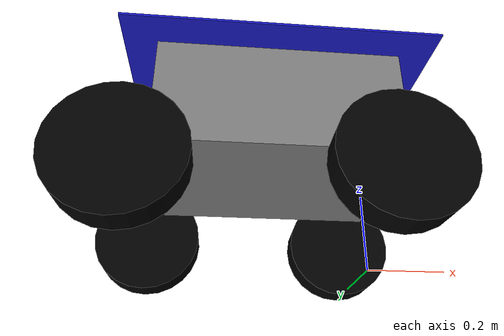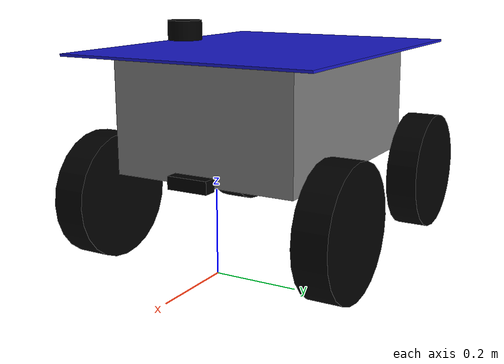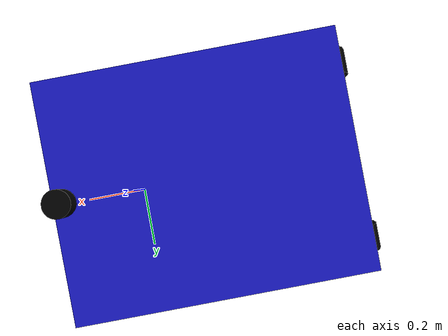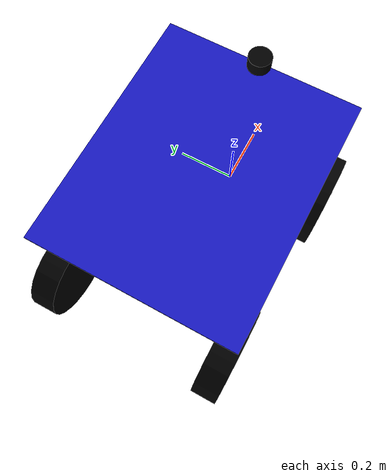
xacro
<?xml version="1.0"?>
<robot xmlns:xacro="http://www.ros.org/wiki/xacro" name="viet_rover">

    <xacro:property name="body_l" value="0.6096"/> <xacro:property name="body_w" value="0.4572"/> <xacro:property name="body_h" value="0.2794"/> <xacro:property name="plate_l" value="0.7747"/> <xacro:property name="plate_w" value="0.6223"/> <xacro:property name="wheel_rad" value="0.1524"/> <xacro:property name="front_track" value="0.61595"/> <xacro:property name="rear_track" value="0.5588"/>  <xacro:property name="wheel_base" value="0.59055"/> <xacro:property name="front_axle_offset" value="0.0635"/> <material name="grey"> <color rgba="0.5 0.5 0.5 1"/> </material>
    <material name="blue"> <color rgba="0.1 0.1 0.8 1"/> </material>
    <material name="black"> <color rgba="0 0 0 1"/> </material>

    <link name="base_footprint"/>

    <joint name="base_joint" type="fixed">
        <parent link="base_footprint"/>
        <child link="base_link"/>
        <origin xyz="0 0 ${wheel_rad}" rpy="0 0 0"/>
    </joint>

    <link name="base_link">
        <inertial>
            <origin xyz="0 0 0" rpy="0 0 0"/>
            <mass value="9.07"/> <inertia ixx="1.5" ixy="0" ixz="0" iyy="2.0" iyz="0" izz="2.5"/>
        </inertial>
    </link>

    <link name="body_box">
        <visual>
            <origin xyz="${-body_l/2 + front_axle_offset} 0 ${body_h/2}" rpy="0 0 0"/>
            <geometry> <box size="${body_l} ${body_w} ${body_h}"/> </geometry>
            <material name="grey"/>
        </visual>
        <collision>
            <origin xyz="${-body_l/2 + front_axle_offset} 0 ${body_h/2}" rpy="0 0 0"/>
            <geometry> <box size="${body_l} ${body_w} ${body_h}"/> </geometry>
        </collision>
        <inertial>
            <origin xyz="${-body_l/2 + front_axle_offset} 0 ${body_h/2}" rpy="0 0 0"/>
            <mass value="4.0"/>
            <inertia ixx="0.1" ixy="0" ixz="0" iyy="0.1" iyz="0" izz="0.1"/>
        </inertial>
    </link>

    <joint name="body_joint" type="fixed">
        <parent link="base_link"/>
        <child link="body_box"/>
        <origin xyz="0 0 0.06985" rpy="0 0 0"/>
    </joint>

    <xacro:macro name="wheel" params="prefix reflect x_pos joint_type">
        <link name="${prefix}_wheel">
            <visual>
                <origin xyz="0 0 0" rpy="${3.14159/2} 0 0"/>
                <geometry> <cylinder radius="${wheel_rad}" length="0.08"/> </geometry>
                <material name="black"/>
            </visual>
            <collision>
                <origin xyz="0 0 0" rpy="${3.14159/2} 0 0"/>
                <geometry> <cylinder radius="${wheel_rad}" length="0.08"/> </geometry>
            </collision>
            <inertial>
                <origin xyz="0 0 0" rpy="${3.14159/2} 0 0"/>
                <mass value="2.0"/>
                <inertia ixx="0.013" ixy="0" ixz="0" iyy="0.013" iyz="0" izz="0.025"/>
            </inertial>
        </link>
        <joint name="${prefix}_wheel_joint" type="${joint_type}">
            <parent link="base_link"/>
            <child link="${prefix}_wheel"/>
            <origin xyz="${x_pos} ${reflect} 0" rpy="0 0 0"/>
            <axis xyz="0 1 0"/>
        </joint>
        <gazebo reference="${prefix}_wheel">
            <mu1 value="1.0"/>
            <mu2 value="1.0"/>
            <kp value="10000000.0"/>
            <kd value="1.0"/>
            <fdir1 value="1 0 0"/>
            <material>Gazebo/Black</material>
        </gazebo>
    </xacro:macro>

    <xacro:wheel prefix="left_front" reflect="${front_track/2}" x_pos="0" joint_type="continuous"/>
    <xacro:wheel prefix="right_front" reflect="-${front_track/2}" x_pos="0" joint_type="continuous"/>
    <xacro:wheel prefix="left_rear" reflect="${rear_track/2}" x_pos="-${wheel_base}" joint_type="continuous"/>
    <xacro:wheel prefix="right_rear" reflect="-${rear_track/2}" x_pos="-${wheel_base}" joint_type="continuous"/>

    <link name="top_plate">
        <visual>
            <geometry> <box size="${plate_l} ${plate_w} 0.006"/> </geometry>
            <material name="blue"/>
        </visual>
        <inertial>
            <mass value="1.0"/>
            <inertia ixx="0.01" ixy="0" ixz="0" iyy="0.01" iyz="0" izz="0.01"/>
        </inertial>
    </link>

    <joint name="plate_joint" type="fixed">
        <parent link="body_box"/>
        <child link="top_plate"/>
        <origin xyz="${-body_l/2 + front_axle_offset} 0 ${body_h}" rpy="0 0 0"/>
    </joint>

    <link name="laser">
        <visual>
            <geometry> <cylinder radius="0.035" length="0.04"/> </geometry>
            <material name="black"/>
        </visual>
        <inertial>
            <mass value="0.1"/>
            <inertia ixx="0.0001" ixy="0" ixz="0" iyy="0.0001" iyz="0" izz="0.0001"/>
        </inertial>
    </link>

    <joint name="laser_joint" type="fixed">
        <parent link="top_plate"/>
        <child link="laser"/>
        <origin xyz="${plate_l/2 - 0.0381} 0 0.0635" rpy="0 0 0"/>
    </joint>

    <link name="camera_link">
        <visual>
            <geometry> <box size="0.03 0.1 0.03"/> </geometry>
            <material name="black"/>
        </visual>
        <inertial>
            <mass value="0.1"/>
            <inertia ixx="0.0001" ixy="0" ixz="0" iyy="0.0001" iyz="0" izz="0.0001"/>
        </inertial>
    </link>

    <joint name="camera_joint" type="fixed">
        <parent link="base_link"/>
        <child link="camera_link"/>
        <origin xyz="0.1016 0 0.08509" rpy="0 0 0"/>
    </joint>

    <gazebo>
        <plugin
            filename="gz-sim-diff-drive-system"
            name="gz::sim::systems::DiffDrive">
            <left_joint>left_front_wheel_joint</left_joint>
            <right_joint>right_front_wheel_joint</right_joint>
            <wheel_separation>${front_track}</wheel_separation>
            <wheel_radius>${wheel_rad}</wheel_radius>
            <odom_publish_frequency>50</odom_publish_frequency>

            <kinematic_controls>true</kinematic_controls>

            <topic>cmd_vel</topic>
            <odom_topic>odom</odom_topic>
            <tf_topic>tf</tf_topic>
            <frame_id>odom</frame_id>
            <child_frame_id>base_footprint</child_frame_id>
        </plugin>

        <plugin
            filename="gz-sim-joint-state-publisher-system"
            name="gz::sim::systems::JointStatePublisher">
            <topic>joint_states</topic>
        </plugin>
    </gazebo>

</robot>
